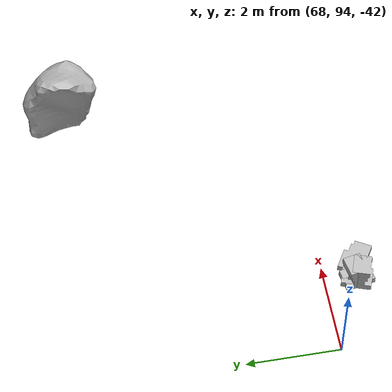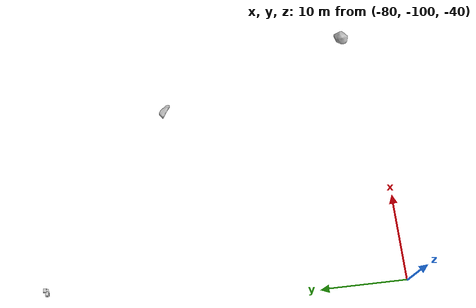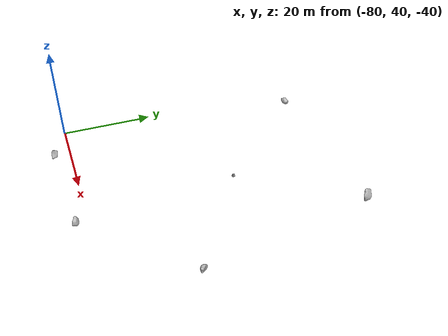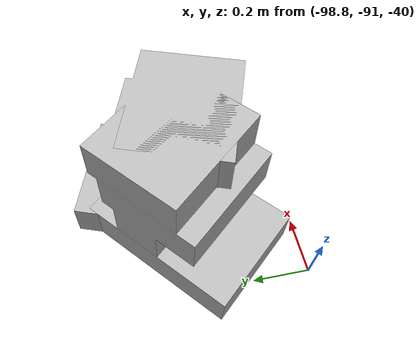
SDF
<sdf version="1.6">
 <world name="ssiv_mockup">
  <model name="nwu">
   <static>true</static>
   <link name="base"/>
   <link name="orientation"/>
   <joint name="__joint_orientation" type="fixed"><child>orientation</child><parent>base</parent></joint>
  </model>
  <model name="surface"><static>true</static></model>
  <model name="usbl"><static>true</static></model>
  <physics type="ode">
   <max_step_size>0.01</max_step_size>
   <real_time_factor>1</real_time_factor>
   <real_time_update_rate>100</real_time_update_rate>
  </physics>
  <plugin name="underwater" filename="libgazebo_underwater.so">
   <model_name>flat_fish</model_name>
   <link_name>flat_fish_body</link_name>
   <drag_coefficient>5 7.5 12.5</drag_coefficient>
   <center_of_buoyancy>0 0 0.1</center_of_buoyancy>
   <buoyancy>18</buoyancy>
  </plugin>
  <include>
   <uri>model://subsea_rock_2</uri>
   <name>subsea_rock_2_-37.10_93.30</name>
   <pose>-37.10 93.30 -40 2.86 4.5 0.73</pose>
  </include>
  <include>
   <uri>model://subsea_rock_1</uri>
   <name>subsea_rock_1_-30.92_56.29</name>
   <pose>-30.92 56.29 -40 1.66 2.84 5.49</pose>
  </include>
  <include>
   <uri>model://subsea_rock_1</uri>
   <name>subsea_rock_1_12.16_-20.54</name>
   <pose>12.16 -20.54 -40 4.26 0.17 4.18</pose>
  </include>
  <include>
   <uri>model://subsea_rock_1</uri>
   <name>subsea_rock_1_23.43_0.44</name>
   <pose>23.43 0.44 -40 4.63 4.13 5.56</pose>
  </include>
  <include>
   <uri>model://subsea_rock_1</uri>
   <name>subsea_rock_1_-49.78_37.78</name>
   <pose>-49.78 37.78 -40 1.60 2.22 2.3</pose>
  </include>
  <include>
   <uri>model://subsea_rock_1</uri>
   <name>subsea_rock_1_97.51_-81.82</name>
   <pose>97.51 -81.82 -40 1.23 1.8 2.73</pose>
  </include>
  <include>
   <uri>model://subsea_rock_1</uri>
   <name>subsea_rock_1_-75.26_94.38</name>
   <pose>-75.26 94.38 -40 1.24 0.60 0.36</pose>
  </include>
  <include>
   <uri>model://subsea_rock_2</uri>
   <name>subsea_rock_2_-6.63_19.46</name>
   <pose>-6.63 19.46 -40 2.11 1.22 0.75</pose>
  </include>
  <include>
   <uri>model://subsea_rock_3</uri>
   <name>subsea_rock_3_-56.62_-74.7</name>
   <pose>-56.62 -74.7 -40 0.2 1.32 1.19</pose>
  </include>
  <include>
   <uri>model://subsea_rock_1</uri>
   <name>subsea_rock_1_51.12_46.27</name>
   <pose>51.12 46.27 -40 3.21 3.93 3.41</pose>
  </include>
  <include>
   <uri>model://subsea_rock_2</uri>
   <name>subsea_rock_2_55.54_98.55</name>
   <pose>55.54 98.55 -40 2.20 5.84 1.49</pose>
  </include>
  <include>
   <uri>model://subsea_rock_1</uri>
   <name>subsea_rock_1_-79.32_-23.96</name>
   <pose>-79.32 -23.96 -40 0.50 1.22 3.86</pose>
  </include>
  <include>
   <uri>model://subsea_rock_1</uri>
   <name>subsea_rock_1_-49.51_-97.24</name>
   <pose>-49.51 -97.24 -40 0.61 5.88 3.49</pose>
  </include>
  <include>
   <uri>model://subsea_rock_1</uri>
   <name>subsea_rock_1_-72.63_36.81</name>
   <pose>-72.63 36.81 -40 2.86 5.13 2.94</pose>
  </include>
  <include>
   <uri>model://subsea_rock_1</uri>
   <name>subsea_rock_1_73.90_98.94</name>
   <pose>73.90 98.94 -40 5.54 4.86 3.89</pose>
  </include>
  <include><uri>model://reef</uri><name>reef_-76.44_-59.2</name><pose>-76.44 -59.2 -40 0 0 2.99</pose></include>
  <include>
   <uri>model://reef</uri>
   <name>reef_-76.84_-59.36</name>
   <pose>-76.84 -59.36 -40 0 0 4.72</pose>
  </include>
  <include><uri>model://reef</uri><name>reef_-51.94_70.61</name><pose>-51.94 70.61 -40 0 0 2.67</pose></include>
  <include><uri>model://reef</uri><name>reef_-51.95_70.54</name><pose>-51.95 70.54 -40 0 0 1.79</pose></include>
  <include><uri>model://reef</uri><name>reef_68.45_93.75</name><pose>68.45 93.75 -40 0 0 3.34</pose></include>
  <include><uri>model://reef</uri><name>reef_68.42_93.73</name><pose>68.42 93.73 -40 0 0 5.96</pose></include>
  <include><uri>model://reef</uri><name>reef_68.73_93.7</name><pose>68.73 93.7 -40 0 0 5.75</pose></include>
  <include>
   <uri>model://reef</uri>
   <name>reef_-98.36_-90.58</name>
   <pose>-98.36 -90.58 -40 0 0 5.94</pose>
  </include>
  <include>
   <uri>model://reef</uri>
   <name>reef_-98.52_-90.62</name>
   <pose>-98.52 -90.62 -40 0 0 2.29</pose>
  </include>
  <include><uri>model://reef</uri><name>reef_28.1_36.30</name><pose>28.1 36.30 -40 0 0 5.2</pose></include>
 </world>
</sdf>

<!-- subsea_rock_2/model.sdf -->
<sdf version="1.4">
    <model name="subsea_rock_2">
        <pose>0 0 0 0 0 0</pose>
        <static>true</static>
        <link name="subsea_rock_2_body">
            <visual name="visual">
                <geometry>
                    <mesh>
                        <uri>model://subsea_rock_2/visual.osgb</uri>
                    </mesh>
                </geometry>
            </visual>
            <collision name="collision">
                <geometry>
                    <mesh>
                        <uri>model://subsea_rock_2/collision.stl</uri>
                    </mesh>
                </geometry>
            </collision>
            <inertial>
                <pose>0 0 -1 0 0 0</pose>
                <inertia>
                    <ixx>0.0</ixx>
                    <ixy>0</ixy>
                    <ixz>0.0</ixz>
                    <iyy>0.0</iyy>
                    <iyz>0</iyz>
                    <izz>0.0</izz>
                </inertia>
                <mass>1.0</mass>
            </inertial>
        </link>
    </model>
</sdf>

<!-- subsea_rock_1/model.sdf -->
<sdf version="1.4">
    <model name="subsea_rock_1">
        <pose>0 0 0 0 0 0</pose>
        <static>true</static>
        <link name="subsea_rock_1_body">
            <visual name="visual">
                <geometry>
                    <mesh>
                        <uri>model://subsea_rock_1/visual.osgb</uri>
                    </mesh>
                </geometry>
            </visual>
            <collision name="collision">
                <geometry>
                    <mesh>
                        <uri>model://subsea_rock_1/collision.stl</uri>
                    </mesh>
                </geometry>
            </collision>
            <inertial>
                <pose>0 0 -1 0 0 0</pose>
                <inertia>
                    <ixx>0.0</ixx>
                    <ixy>0</ixy>
                    <ixz>0.0</ixz>
                    <iyy>0.0</iyy>
                    <iyz>0</iyz>
                    <izz>0.0</izz>
                </inertia>
                <mass>1.0</mass>
            </inertial>
        </link>
    </model>
</sdf>

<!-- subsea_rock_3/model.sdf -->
<sdf version="1.4">
    <model name="subsea_rock_3">
        <pose>0 0 0 0 0 0</pose>
        <static>true</static>
        <link name="subsea_rock_3_body">
            <visual name="visual">
                <geometry>
                    <mesh>
                        <uri>model://subsea_rock_3/visual.osgb</uri>
                    </mesh>
                </geometry>
            </visual>
            <collision name="collision">
                <geometry>
                    <mesh>
                        <uri>model://subsea_rock_3/collision.stl</uri>
                    </mesh>
                </geometry>
            </collision>
            <inertial>
                <pose>0 0 -1 0 0 0</pose>
                <inertia>
                    <ixx>0.0</ixx>
                    <ixy>0</ixy>
                    <ixz>0.0</ixz>
                    <iyy>0.0</iyy>
                    <iyz>0</iyz>
                    <izz>0.0</izz>
                </inertia>
                <mass>1.0</mass>
            </inertial>
        </link>
    </model>
</sdf>

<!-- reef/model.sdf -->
<sdf version="1.4">
    <model name="reef">
        <pose>0 0 0 0 0 0</pose>
        <static>true</static>
        <link name="reef_body">
            <visual name="visual">
                <geometry>
                    <mesh>
                        <uri>model://reef/visual.osgb</uri>
                    </mesh>
                </geometry>
            </visual>
            <collision name="collision">
                <geometry>
                    <mesh>
                        <uri>model://reef/collision.stl</uri>
                    </mesh>
                </geometry>
            </collision>
            <inertial>
                <pose>0 0 -1 0 0 0</pose>
                <inertia>
                    <ixx>0.0</ixx>
                    <ixy>0</ixy>
                    <ixz>0.0</ixz>
                    <iyy>0.0</iyy>
                    <iyz>0</iyz>
                    <izz>0.0</izz>
                </inertia>
                <mass>1.0</mass>
            </inertial>
        </link>
    </model>
</sdf>
